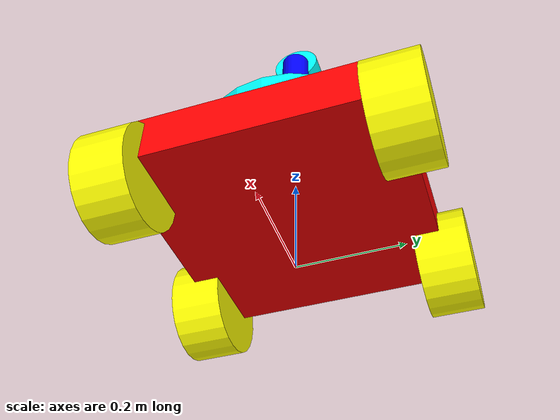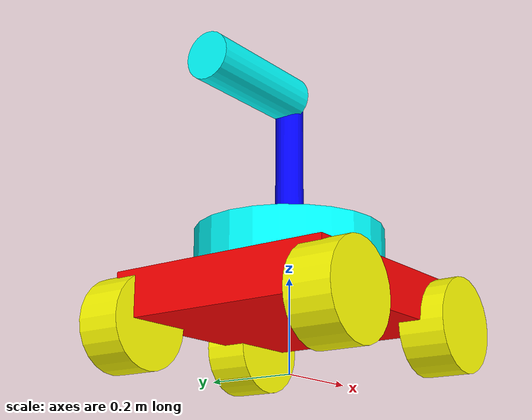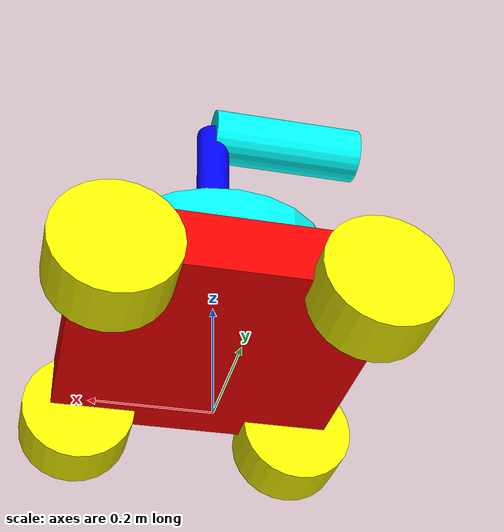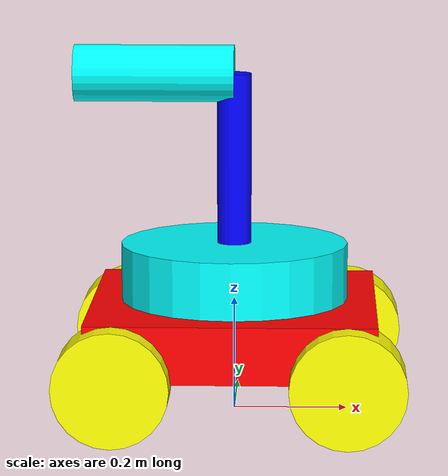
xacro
<?xml version="1.0"?>

<robot xmlns:xacro="http://www.ros.org/wiki/xacro" name="sentry">
    <xacro:arg name="hardware_type" default="mock" />
    <xacro:arg name="scene" default="flat" />
    <xacro:include filename="$(find spr_sentry_description)/sentry.urdf.xacro" />
    <ros2_control name="SprHardwareInterface" type="system">
        <!-- 通过 launch 参数 hardware_type 切换硬件后端：real / mock / mujoco -->
        <xacro:if value="${'$(arg hardware_type)' == 'real'}">
            <hardware>
                <plugin>spr_hw_interface/SprHardwareInterface</plugin>
                <param name="can_device_count_">1</param>
            </hardware>
        </xacro:if>
        <xacro:if value="${'$(arg hardware_type)' == 'mock'}">
            <hardware>
                <!-- 无真机时用 effort 模拟硬件调试位置环->effort 链路 -->
                <plugin>spr_hw_interface/EffortMockSystem</plugin>
                <param name="accel_per_effort">2</param>
                <param name="max_velocity">50</param>
            </hardware>
        </xacro:if>
        <xacro:if value="${'$(arg hardware_type)' == 'mujoco'}">
            <hardware>
                <!-- 成熟方案：mujoco_ros2_control 硬件插件（自带 MuJoCo 仿真窗口）。
                     mujoco_model 指向场景文件（场景 = 机器人本体 include + 世界/地形），
                     由 launch 的 scene:=flat|rough|ramp|jump 参数切换。 -->
                <plugin>mujoco_ros2_control/MujocoSystemInterface</plugin>
                <param name="mujoco_model">$(find spr_sentry_description)/models/scenes/$(arg scene).xml</param>
            </hardware>
        </xacro:if>
        <joint name="bigyaw_joint">
            <param name="motor_name">bigyaw_motor</param>
            <param name="can_bus">can0</param>
            <param name="tx_id">1</param>
            <param name="offset">0</param>
            <param name="motor_type">DM6006</param>
            <param name="pos_max">3.14</param>
            <param name="vel_max">30</param>
            <param name="tor_max">10</param>
            <command_interface name="effort" />
            <command_interface name="position" />
            <command_interface name="velocity" />
            <state_interface name="position" />
            <state_interface name="velocity" />
            <state_interface name="effort" />
        </joint>
        <joint name="small_yaw_joint">
            <param name="motor_name">small_yaw_motor</param>
            <param name="can_bus">can0</param>
            <param name="tx_id">5</param>
            <param name="offset">-1.805</param>
            <param name="motor_type">DM4310</param>
            <param name="pos_max">3.14</param>
            <param name="vel_max">30</param>
            <param name="tor_max">10</param>
            <command_interface name="effort" />
            <command_interface name="position"/>
            <state_interface name="position" />
            <state_interface name="velocity" />
            <state_interface name="effort" />
        </joint>
        <joint name="pitch_joint">
            <param name="motor_name">pitch_motor</param>
            <param name="can_bus">can0</param>
            <param name="tx_id">4</param>
            <param name="offset">2.728</param>
            <param name="motor_type">DM4310</param>
            <param name="pos_max">3.14</param>
            <param name="vel_max">30</param>
            <param name="tor_max">10</param>
            <command_interface name="effort" />
            <command_interface name="position" />
            <command_interface name="velocity" />
            <state_interface name="position" />
            <state_interface name="velocity" />
            <state_interface name="effort" />
        </joint>
        <joint name="left_wheel_front_joint">
            <param name="motor_name">left_wheel_front_motor</param>
            <param name="can_bus">can1</param>
            <param name="tx_id">1</param>
            <param name="offset">0</param>
            <param name="motor_type">M3508</param>
            <param name="reduction">19.2032</param>
            <param name="tor_max">3.0</param>
            <param name="direction">-1</param>
            <command_interface name="effort" />
            <state_interface name="position" />
            <state_interface name="velocity" />
        </joint>
        <joint name="right_wheel_front_joint">
            <param name="motor_name">right_wheel_front_motor</param>
            <param name="can_bus">can1</param>
            <param name="tx_id">2</param>
            <param name="offset">0</param>
            <param name="motor_type">M3508</param>
            <param name="reduction">19.2032</param>
            <param name="tor_max">3.0</param>
            <param name="direction">1</param>
            <command_interface name="effort" />
            <state_interface name="position" />
            <state_interface name="velocity" />
        </joint>
        <joint name="left_wheel_back_joint">
            <param name="motor_name">left_wheel_back_motor</param>
            <param name="can_bus">can1</param>
            <param name="tx_id">4</param>
            <param name="offset">0</param>
            <param name="motor_type">M3508</param>
            <param name="reduction">19.2032</param>
            <param name="tor_max">3.0</param>
            <param name="direction">-1</param>
            <command_interface name="effort" />
            <state_interface name="position" />
            <state_interface name="velocity" />
        </joint>
        <joint name="right_wheel_back_joint">
            <param name="motor_name">right_wheel_back_motor</param>
            <param name="can_bus">can1</param>
            <param name="tx_id">3</param>
            <param name="offset">0</param>
            <param name="motor_type">M3508</param>
            <param name="reduction">19.2032</param>
            <param name="tor_max">3.0</param>
            <param name="direction">1</param>            <command_interface name="effort" />
            <state_interface name="position" />
            <state_interface name="velocity" />
        </joint>
    </ros2_control>
</robot>

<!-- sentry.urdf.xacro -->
<robot name="sentry">
  <link name="base_footprint"/>  <!-- 底盘里程计原点(URDF根)，odom->base_footprint 由 chassis_controller 动态发布 -->
  <link name="base_link">
    <visual>
      <origin xyz="0 0 0" rpy="0 0 0" />
      <material name="">
        <color rgba="1 0 0 1" />
      </material>
      <geometry>
        <box size="0.5 0.5 0.1" />
      </geometry>
    </visual>
    <collision>
      <origin xyz="0 0 0" rpy="0 0 0" />
      <geometry>
        <box size="0.5 0.5 0.1" />
      </geometry>
    </collision>
  </link>
  <joint name="base_joint" type="fixed">
    <origin xyz="0 0 0.15" rpy="0 0 0" />
    <parent link="base_footprint" />
    <child link="base_link" />
    <axis xyz="0 0 0" />
  </joint>
  <link name="bigyaw_link">
    <visual>
      <origin xyz="0 0 0" rpy="0 0 0" />
      <material name="">
        <color rgba="0 1 1 1" />
      </material>
      <geometry>
        <cylinder radius="0.2" length="0.1" />
      </geometry>
    </visual>
    <collision>
      <origin xyz="0 0 0" rpy="0 0 0" />
      <geometry>
        <cylinder radius="0.2" length="0.1" />
      </geometry>
    </collision>
  </link>
  <joint name="bigyaw_joint" type="continuous">
      <origin xyz="0 0 0.1" rpy="0 0 0" />
      <parent link="base_link" />
      <child link="bigyaw_link" />
      <axis xyz="0 0 1" />
  </joint>
  <link name="small_yaw_link">
    <visual>
      <origin xyz="0 0 0.1" rpy="0 0 0" />
      <material name="">
        <color rgba="0 0 1 1" />
      </material>
      <geometry>
        <cylinder radius="0.03" length="0.3" />
      </geometry>
    </visual>
    <collision>
      <origin xyz="0 0 0" rpy="0 0 0" />
      <geometry>
        <cylinder radius="0.03" length="0.3" />
      </geometry>
    </collision>
  </link>
  <joint name="small_yaw_joint" type="continuous">
    <origin xyz="0 0 0.1" rpy="0 0 0" />
    <parent link="bigyaw_link" />
    <child link="small_yaw_link" />
    <axis xyz="0 0 1" />
  </joint>
  <link name="pitch_link">
    <visual>
      <origin xyz="-0.14 0 0" rpy="0 1.5708 0" />
      <material name="">
        <color rgba="0 1 1 1" />
      </material>
      <geometry>
        <cylinder radius="0.05" length="0.28" />
      </geometry>
    </visual>
    <collision>
      <origin xyz="-0.14 0 0" rpy="0 1.5708 0" />
      <geometry>
        <cylinder radius="0.05" length="0.28" />
      </geometry>
    </collision>
  </link>
  <joint name="pitch_joint" type="continuous">
    <origin xyz="0 0 0.25" rpy="0 0 0" />
    <parent link="small_yaw_link" />
    <child link="pitch_link" />
    <axis xyz="0 1 0" />
  </joint>
  <link name="left_wheel_front_link">
    <visual>
      <origin xyz="0 0 0" rpy="1.5708 0 0" />
      <material name="">
        <color rgba="1 1 0 1" />
      </material>
      <geometry>
        <cylinder radius="0.1" length="0.1" />
      </geometry>
    </visual>
    <collision>
      <origin xyz="0 0 0" rpy="1.5708 0 0" />
      <geometry>
        <cylinder radius="0.1" length="0.1" />
      </geometry>
    </collision>
  </link>
  <joint name="left_wheel_front_joint" type="continuous">
    <origin xyz="-0.2 -0.25 -0.05" rpy="0 0 0" />
    <parent link="base_link" />
    <child link="left_wheel_front_link" />
    <axis xyz="0 1 0" />
  </joint>
  <link name="right_wheel_front_link">
    <visual>
      <origin xyz="0 0 0" rpy="1.5708 0 0" />
      <material name="">
        <color rgba="1 1 0 1" />
      </material>
      <geometry>
        <cylinder radius="0.1" length="0.1" />
      </geometry>
    </visual>
    <collision>
      <origin xyz="0 0 0" rpy="1.5708 0 0" />
      <geometry>
        <cylinder radius="0.1" length="0.1" />
      </geometry>
    </collision>
  </link>
  <joint name="right_wheel_front_joint" type="continuous">
    <origin xyz="-0.2 0.25 -0.05" rpy="0 0 0" />
    <parent link="base_link" />
    <child link="right_wheel_front_link" />
    <axis xyz="0 1 0" />
  </joint>
  <link name="left_wheel_back_link">
    <visual>
      <origin xyz="0 0 0" rpy="1.5708 0 0" />
      <material name="">
        <color rgba="1 1 0 1" />
      </material>
      <geometry>
        <cylinder radius="0.1" length="0.1" />
      </geometry>
    </visual>
    <collision>
      <origin xyz="0 0 0" rpy="1.5708 0 0" />
      <geometry>
        <cylinder radius="0.1" length="0.1" />
      </geometry>
    </collision>
    </link>
    <joint name="left_wheel_back_joint" type="continuous">
      <origin xyz="0.2 -0.25 -0.05" rpy="0 0 0" />
      <parent link="base_link" />
      <child link="left_wheel_back_link" />
      <axis xyz="0 1 0" />
    </joint>
    <link name="right_wheel_back_link">
        <visual>
            <origin xyz="0 0 0" rpy="1.5708 0 0" />
            <material name="">
            <color rgba="1 1 0 1" />
            </material>
            <geometry>
                <cylinder radius="0.1" length="0.1" />
            </geometry>
        </visual>
        <collision>
            <origin xyz="0 0 0" rpy="1.5708 0 0" />
            <geometry>
                <cylinder radius="0.1" length="0.1" />
            </geometry>
        </collision>
    </link>
    <joint name="right_wheel_back_joint" type="continuous">
        <origin xyz="0.2 0.25 -0.05" rpy="0 0 0" />
        <parent link="base_link" />
        <child link="right_wheel_back_link" />
        <axis xyz="0 1 0" />
    </joint>
</robot>
